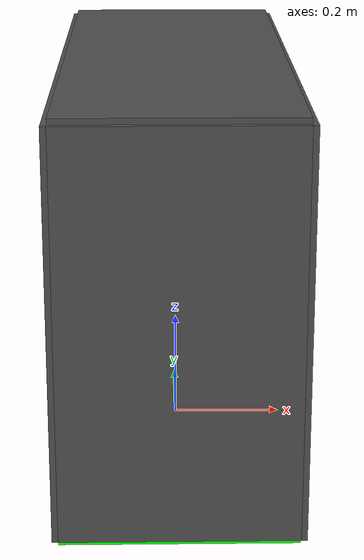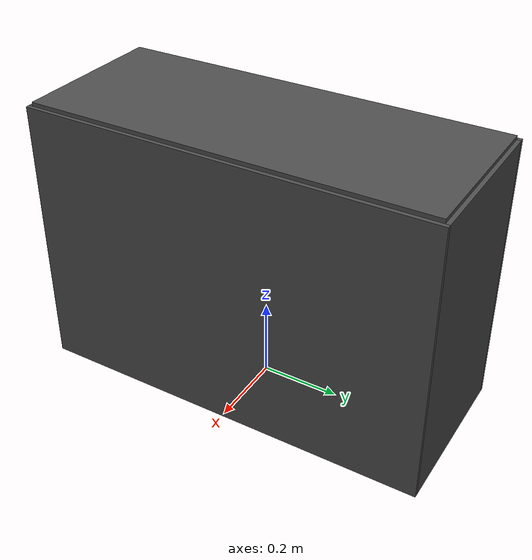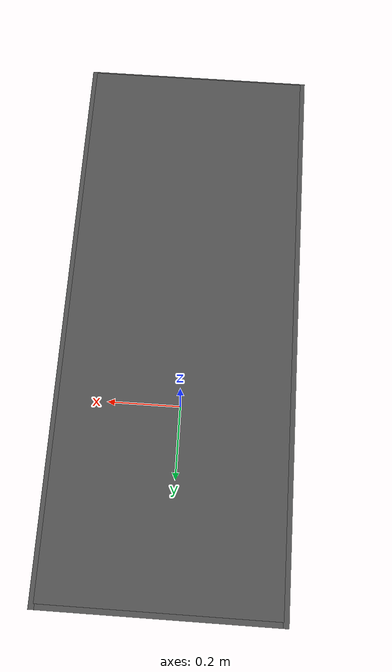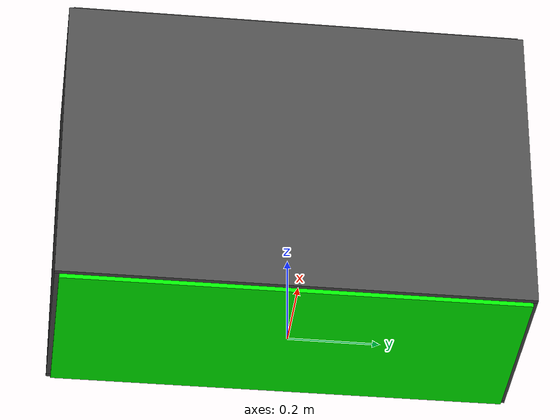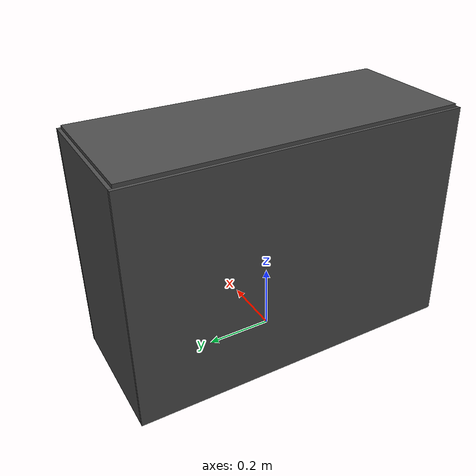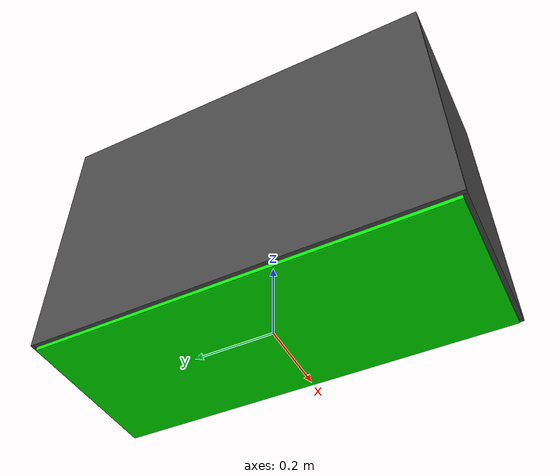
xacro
<?xml version="1.0"?>
<robot xmlns:xacro="http://www.ros.org/wiki/xacro" name="scene_mingruiyu_7">

  <xacro:property name="PI" value="3.1415926535897931" />
  <xacro:property name="l_x" value="0.4" />
  <xacro:property name="l_y" value="1" />
  <xacro:property name="d" value="0.01" />
  <xacro:property name="h" value="0.7" />
  <xacro:property name="corridor_w" value="0.4" />

  <!-- Include statements for macros -->
  <xacro:include filename="rectangle_pole_macro.xacro"/>
  <xacro:include filename="hollow_cuboid_macro.xacro"/>

  <!-- GROUND PLANE -->
  <link name="ground_plane">
    <visual>
      <geometry>
        <box size="${l_x} ${l_y} ${d}"/>
      </geometry>
      <origin xyz="0 0 ${-d/2}" rpy="0 0 0"/>
      <material name="green"/>
    </visual>
    <collision>
      <geometry>
        <box size="${l_x} ${l_y} ${d}"/>
      </geometry>
      <origin xyz="0 0 ${-d/2}" rpy="0 0 0"/>
    </collision>
  </link>

  <!-- Use the hollow_cuboid macro -->
  <xacro:hollow_cuboid prefix="cuboid"
                        parent_link="ground_plane"
                        length="${l_x}"
                        width="${l_y}"
                        height="${h}"
                        corridor_width="${corridor_w}"
                        wall_thickness="${d}"/>

  <!-- OBSTACLES (created from square poles) -->
  <!-- ====================== POLE 1 : BEGIN ====================== -->
  <!-- Created link has the name: prefix+"_root_link" -->
  <xacro:rectangle_pole prefix="pole_1" parent_link="ground_plane" length="0.4" thickness_x="0.06" thickness_y="0.06">
    <origin xyz="0.0 0.0 0.0" rpy="0 0 0"/>
  </xacro:rectangle_pole>
  <!-- ====================== POLE 1 : END ====================== -->

</robot>

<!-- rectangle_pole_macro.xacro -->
<robot xmlns:xacro="http://www.ros.org/wiki/xacro">
    <xacro:include filename="materials.xacro"/>

    <xacro:macro name="rectangle_pole" params="prefix parent_link length thickness_x thickness_y *root_pose">
        <link name="${prefix}_root_link">
            <visual>
                <geometry>
                    <box size="${thickness_x} ${thickness_y} ${length}"/>
                </geometry>
                <origin xyz="0 0 ${length / 2.0}" rpy="0 0 0"/>
                <material name="orange"/>
            </visual>
            <collision>
                <geometry>
                    <box size="${thickness_x} ${thickness_y} ${length}"/>
                </geometry>
                <origin xyz="0 0 ${length / 2.0}" rpy="0 0 0"/>
            </collision>
        </link>

        <joint name="${prefix}_fixture_joint" type="fixed">
            <parent link="${parent_link}"/>
            <child link="${prefix}_root_link" />
            <xacro:insert_block name="root_pose" />
        </joint>

    </xacro:macro>
</robot>

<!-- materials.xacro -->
<robot>
  <material name="dark_gray"><color rgba="0.2 0.2 0.2 1.0" /></material>
  <material name="gray"><color rgba="0.3 0.3 0.3 1.0" /></material>
  <material name="light_gray"><color rgba="0.4 0.4 0.4 1.0" /></material>
  <material name="yellow"><color rgba="0.8 0.8 0.0 1.0" /></material>
  <material name="orange"><color rgba="1.0 0.5 0.0 1.0" /></material>
  <material name="green"><color rgba="0.0 1.0 0.0 1.0" /></material>
  <material name="teal"><color rgba="0.0 1.0 1.0 1.0" /></material>
  <material name="black"><color rgba="0.15 0.15 0.15 1.0" /></material>
</robot>

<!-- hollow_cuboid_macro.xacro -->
<robot xmlns:xacro="http://www.ros.org/wiki/xacro">

    <!-- Macro to create a hollow cuboid -->
    <xacro:macro name="hollow_cuboid" params="prefix parent_link length width height wall_thickness corridor_width">
        <!-- Calculate half dimensions -->
        <xacro:property name="half_length" value="${length / 2}"/>
        <xacro:property name="half_width" value="${width / 2}"/>
        <xacro:property name="half_wall_thickness" value="${wall_thickness / 2}"/>

        <!-- Left Wall -->
        <link name="${prefix}_left_wall">
            <visual>
                <geometry>
                    <box size="${wall_thickness} ${width + 2 * wall_thickness} ${height}"/>
                </geometry>
                <origin xyz="0 0 ${height / 2}" rpy="0 0 0"/>
                <material name="gray"/>
            </visual>
            <collision>
                <geometry>
                    <box size="${wall_thickness} ${width + 2 * wall_thickness} ${height}"/>
                </geometry>
                <origin xyz="0 0 ${height / 2}" rpy="0 0 0"/>
            </collision>
        </link>
        <joint name="${prefix}_left_wall_joint" type="fixed">
            <parent link="${parent_link}"/>
            <child link="${prefix}_left_wall"/>
            <origin xyz="${- (half_length + half_wall_thickness)} 0 0" rpy="0 0 0"/>
        </joint>

        <!-- Right Wall -->
        <link name="${prefix}_right_wall">
            <visual>
                <geometry>
                    <box size="${wall_thickness} ${width + 2 * wall_thickness} ${height}"/>
                </geometry>
                <origin xyz="0 0 ${height / 2}" rpy="0 0 0"/>
                <material name="gray"/>
            </visual>
            <collision>
                <geometry>
                    <box size="${wall_thickness} ${width + 2 * wall_thickness} ${height}"/>
                </geometry>
                <origin xyz="0 0 ${height / 2}" rpy="0 0 0"/>
            </collision>
        </link>
        <joint name="${prefix}_right_wall_joint" type="fixed">
            <parent link="${parent_link}"/>
            <child link="${prefix}_right_wall"/>
            <origin xyz="${half_length + half_wall_thickness} 0 0" rpy="0 0 0"/>
        </joint>

        <!-- Front Wall -->
        <link name="${prefix}_front_wall">
            <visual>
                <geometry>
                    <box size="${length} ${wall_thickness} ${height}"/>
                </geometry>
                <origin xyz="0 0 ${height / 2}" rpy="0 0 0"/>
                <material name="gray"/>
            </visual>
            <collision>
                <geometry>
                    <box size="${length} ${wall_thickness} ${height}"/>
                </geometry>
                <origin xyz="0 0 ${height / 2}" rpy="0 0 0"/>
            </collision>
        </link>
        <joint name="${prefix}_front_wall_joint" type="fixed">
            <parent link="${parent_link}"/>
            <child link="${prefix}_front_wall"/>
            <origin xyz="0 ${half_width + half_wall_thickness} 0" rpy="0 0 0"/>
        </joint>

        <!-- Back Wall -->
        <link name="${prefix}_back_wall">
            <visual>
                <geometry>
                    <box size="${length} ${wall_thickness} ${height}"/>
                </geometry>
                <origin xyz="0 0 ${height / 2}" rpy="0 0 0"/>
                <material name="gray"/>
            </visual>
            <collision>
                <geometry>
                    <box size="${length} ${wall_thickness} ${height}"/>
                </geometry>
                <origin xyz="0 0 ${height / 2}" rpy="0 0 0"/>
            </collision>
        </link>
        <joint name="${prefix}_back_wall_joint" type="fixed">
            <parent link="${parent_link}"/>
            <child link="${prefix}_back_wall"/>
            <origin xyz="0 ${- (half_width + half_wall_thickness)} 0" rpy="0 0 0"/>
        </joint>

        <!-- Top Wall -->
        <link name="${prefix}_top_wall">
            <visual>
                <geometry>
                    <box size="${length} ${width} ${wall_thickness}"/>
                </geometry>
                <origin xyz="0 0 ${wall_thickness/2}" rpy="0 0 0"/>
                <material name="gray"/>
            </visual>
            <collision>
                <geometry>
                    <box size="${length} ${width} ${wall_thickness}"/>
                </geometry>
                <origin xyz="0 0 ${wall_thickness/2}" rpy="0 0 0"/>
            </collision>
        </link>
        <joint name="${prefix}_top_wall_joint" type="fixed">
            <parent link="${parent_link}"/>
            <child link="${prefix}_top_wall"/>
            <origin xyz="0 0 ${height}" rpy="0 0 0"/>
        </joint>

        <!-- Back INNER Wall -->
        <link name="${prefix}_back_inner_wall">
            <visual>
                <geometry>
                    <box size="${wall_thickness} ${width/2-corridor_width/2}  ${height}"/>
                </geometry>
                <origin xyz="0 ${-0.5*(width/2-corridor_width/2)} ${height / 2}" rpy="0 0 0"/>
                <material name="orange"/>
            </visual>
            <collision>
                <geometry>
                    <box size="${wall_thickness} ${width/2-corridor_width/2}  ${height}"/>
                </geometry>
                <origin xyz="0 ${-0.5*(width/2-corridor_width/2)} ${height / 2}" rpy="0 0 0"/>
            </collision>
        </link>
        <joint name="${prefix}_back_inner_wall_joint" type="fixed">
            <parent link="${parent_link}"/>
            <child link="${prefix}_back_inner_wall"/>
            <origin xyz="0 ${-corridor_width/2} 0" rpy="0 0 0"/>
        </joint>

        <!-- Front INNER Wall -->
        <link name="${prefix}_front_inner_wall">
            <visual>
                <geometry>
                    <box size="${wall_thickness} ${width/2-corridor_width/2}  ${height}"/>
                </geometry>
                <origin xyz="0 ${0.5*(width/2-corridor_width/2)} ${height / 2}" rpy="0 0 0"/>
                <material name="orange"/>
            </visual>
            <collision>
                <geometry>
                    <box size="${wall_thickness} ${width/2-corridor_width/2}  ${height}"/>
                </geometry>
                <origin xyz="0 ${0.5*(width/2-corridor_width/2)} ${height / 2}" rpy="0 0 0"/>
            </collision>
        </link>
        <joint name="${prefix}_front_inner_wall_joint" type="fixed">
            <parent link="${parent_link}"/>
            <child link="${prefix}_front_inner_wall"/>
            <origin xyz="0 ${corridor_width/2} 0" rpy="0 0 0"/>
        </joint>

    </xacro:macro>

</robot>
